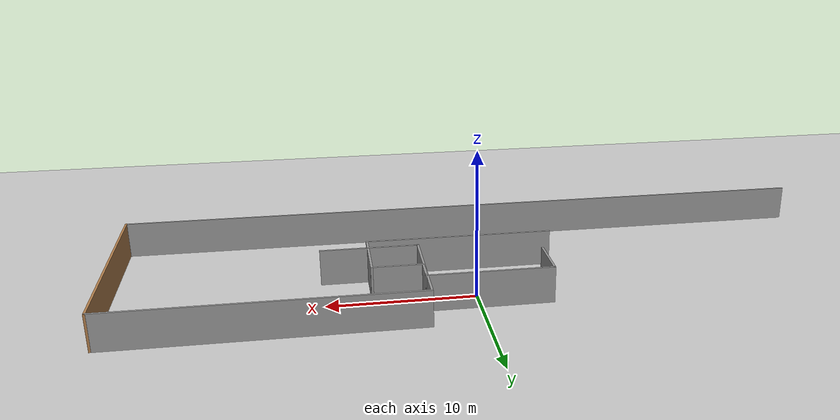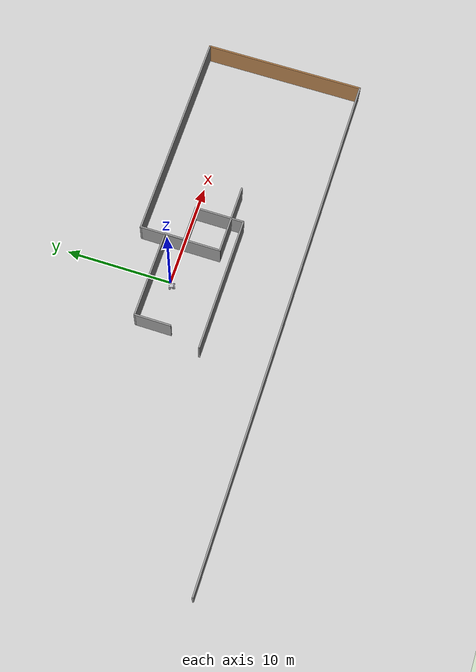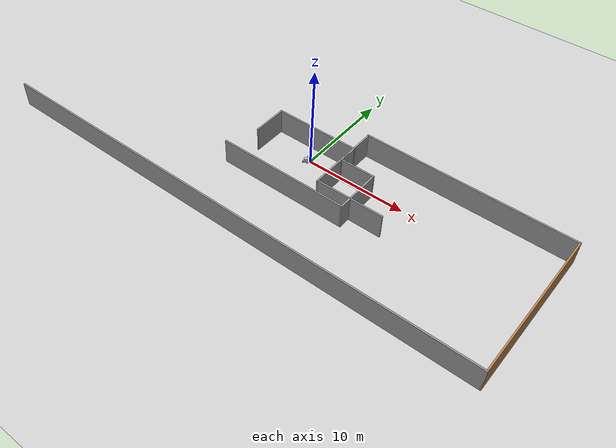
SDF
<sdf version="1.7">
 <world name="default">
  <light name="sun" type="directional">
   <pose>0 0 10 0 -0 0</pose>
   <diffuse>0.8 0.8 0.8 1</diffuse>
   <specular>0.2 0.2 0.2 1</specular>
   <attenuation>
    <range>1000</range>
    <constant>0.9</constant>
    <linear>0.01</linear>
    <quadratic>0.001</quadratic>
   </attenuation>
   <direction>-0.5 0.1 -0.9</direction>
   <spot><inner_angle>0</inner_angle><outer_angle>0</outer_angle><falloff>0</falloff></spot>
  </light>
  <model name="ground_plane">
   <static>1</static>
   <link name="link">
    <collision name="collision">
     <geometry><plane><normal>0 0 1</normal><size>100 100</size></plane></geometry>
     <surface>
      <contact><collide_bitmask>65535</collide_bitmask></contact>
      <friction><ode><mu>100</mu><mu2>50</mu2></ode></friction>
     </surface>
    </collision>
    <visual name="visual">
     <cast_shadows>0</cast_shadows>
     <geometry><plane><normal>0 0 1</normal><size>100 100</size></plane></geometry>
     <material>
      <script><uri>file://media/materials/scripts/gazebo.material</uri><name>Gazebo/Grey</name></script>
     </material>
    </visual>
   </link>
  </model>
  <gravity>0 0 -9.8</gravity>
  <magnetic_field>6e-06 2.3e-05 -4.2e-05</magnetic_field>
  <atmosphere type="adiabatic"/>
  <physics type="ode">
   <max_step_size>0.001</max_step_size>
   <real_time_factor>1</real_time_factor>
   <real_time_update_rate>1000</real_time_update_rate>
  </physics>
  <scene><ambient>0.4 0.4 0.4 1</ambient><background>0.7 0.7 0.7 1</background><shadows>1</shadows></scene>
  <spherical_coordinates>
   <surface_model>EARTH_WGS84</surface_model>
   <latitude_deg>0</latitude_deg>
   <longitude_deg>0</longitude_deg>
   <elevation>0</elevation>
   <heading_deg>0</heading_deg>
  </spherical_coordinates>
  <model name="Autonomous">
   <link name="base_link">
    <inertial>
     <pose>0.004069 0.00053 0.159766 0 -0 0</pose>
     <mass>243.578</mass>
     <inertia>
      <ixx>3.71483</ixx>
      <ixy>-0.0104782</ixy>
      <ixz>-0.117297</ixz>
      <iyy>6.55168</iyy>
      <iyz>-0.0172105</iyz>
      <izz>7.95273</izz>
     </inertia>
    </inertial>
    <collision name="base_link_collision">
     <geometry>
      <mesh>
       <scale>0.001 0.001 0.001</scale>
       <uri>/home/ogunsina/auto_ws/src/Autonomous_description/meshes/base_link.stl</uri>
      </mesh>
     </geometry>
     <surface><friction><ode><mu>0.1</mu><mu2>0.1</mu2></ode></friction></surface>
    </collision>
    <collision name="base_link_fixed_joint_lump__head_plate_1_collision_1">
     <geometry>
      <mesh>
       <scale>0.001 0.001 0.001</scale>
       <uri>/home/ogunsina/auto_ws/src/Autonomous_description/meshes/head_plate_1.stl</uri>
      </mesh>
     </geometry>
     <surface><friction><ode><mu>0.2</mu><mu2>0.2</mu2></ode></friction></surface>
    </collision>
    <collision name="base_link_fixed_joint_lump__lidar_1_collision_2">
     <geometry>
      <mesh>
       <scale>0.001 0.001 0.001</scale>
       <uri>/home/ogunsina/auto_ws/src/Autonomous_description/meshes/lidar_1.stl</uri>
      </mesh>
     </geometry>
     <surface><friction><ode><mu>0.2</mu><mu2>0.2</mu2></ode></friction></surface>
    </collision>
    <collision name="base_link_fixed_joint_lump__camera_1_collision_3">
     <geometry>
      <mesh>
       <scale>0.001 0.001 0.001</scale>
       <uri>/home/ogunsina/auto_ws/src/Autonomous_description/meshes/camera_1.stl</uri>
      </mesh>
     </geometry>
     <surface><friction><ode><mu>0.2</mu><mu2>0.2</mu2></ode></friction></surface>
    </collision>
    <visual name="base_link_visual">
     <geometry>
      <mesh>
       <scale>0.001 0.001 0.001</scale>
       <uri>/home/ogunsina/auto_ws/src/Autonomous_description/meshes/base_link.stl</uri>
      </mesh>
     </geometry>
     <material>
      <script><name>Gazebo/Silver</name><uri>file://media/materials/scripts/gazebo.material</uri></script>
     </material>
    </visual>
    <visual name="base_link_fixed_joint_lump__head_plate_1_visual_1">
     <geometry>
      <mesh>
       <scale>0.001 0.001 0.001</scale>
       <uri>/home/ogunsina/auto_ws/src/Autonomous_description/meshes/head_plate_1.stl</uri>
      </mesh>
     </geometry>
     <material>
      <script><name>Gazebo/Silver</name><uri>file://media/materials/scripts/gazebo.material</uri></script>
     </material>
    </visual>
    <visual name="base_link_fixed_joint_lump__lidar_1_visual_2">
     <geometry>
      <mesh>
       <scale>0.001 0.001 0.001</scale>
       <uri>/home/ogunsina/auto_ws/src/Autonomous_description/meshes/lidar_1.stl</uri>
      </mesh>
     </geometry>
     <material>
      <script><name>Gazebo/Silver</name><uri>file://media/materials/scripts/gazebo.material</uri></script>
     </material>
    </visual>
    <visual name="base_link_fixed_joint_lump__camera_1_visual_3">
     <geometry>
      <mesh>
       <scale>0.001 0.001 0.001</scale>
       <uri>/home/ogunsina/auto_ws/src/Autonomous_description/meshes/camera_1.stl</uri>
      </mesh>
     </geometry>
     <material>
      <script><name>Gazebo/Silver</name><uri>file://media/materials/scripts/gazebo.material</uri></script>
     </material>
    </visual>
    <sensor name="head_hokuyo_sensor" type="ray">
     <visualize>1</visualize>
     <update_rate>40</update_rate>
     <ray>
      <scan>
       <horizontal>
        <samples>720</samples>
        <resolution>1</resolution>
        <min_angle>-1.5708</min_angle>
        <max_angle>1.5708</max_angle>
       </horizontal>
       <vertical><samples>1</samples><min_angle>0</min_angle><max_angle>0</max_angle></vertical>
      </scan>
      <range><min>0.1</min><max>30</max><resolution>0.01</resolution></range>
      <noise><type>gaussian</type><mean>0</mean><stddev>0.01</stddev></noise>
     </ray>
     <plugin name="gazebo_ros_head_hokuyo_controller" filename="libgazebo_ros_laser.so">
      <topicName>/scan</topicName>
      <frameName>lidar_1</frameName>
      <robotNamespace>/</robotNamespace>
     </plugin>
     <pose>0.286443 -0.129544 0.3 0 -0 0</pose>
    </sensor>
    <self_collide>1</self_collide>
    <sensor name="imu_sensor" type="imu">
     <always_on>1</always_on>
     <update_rate>100</update_rate>
     <visualize>1</visualize>
     <topic>/imu</topic>
     <plugin name="imu_plugin" filename="libgazebo_ros_imu_sensor.so">
      <topicName>imu</topicName>
      <bodyName>camera_1</bodyName>
      <updateRateHZ>10.0</updateRateHZ>
      <gaussianNoise>0.0</gaussianNoise>
      <xyzOffset>0 0 0</xyzOffset>
      <rpyOffset>0 0 0</rpyOffset>
      <frameName>camera_1</frameName>
      <initialOrientationAsReference>0</initialOrientationAsReference>
      <robotNamespace>/</robotNamespace>
     </plugin>
     <pose>0.189761 -0.076346 0.27 0 -0 0</pose>
    </sensor>
   </link>
   <joint name="Rev2" type="revolute">
    <pose relative_to="base_link">-0.175 -0.2315 0.051428 0 -0 0</pose>
    <parent>base_link</parent>
    <child>leftwheel1_1</child>
    <axis>
     <xyz>0 1 0</xyz>
     <limit><lower>-1e+16</lower><upper>1e+16</upper></limit>
     <dynamics><spring_reference>0</spring_reference><spring_stiffness>0</spring_stiffness></dynamics>
    </axis>
   </joint>
   <link name="leftwheel1_1">
    <pose relative_to="Rev2">0 0 0 0 -0 0</pose>
    <inertial>
     <pose>-0 0.017601 -0 0 -0 0</pose>
     <mass>28.5062</mass>
     <inertia>
      <ixx>0.136487</ixx>
      <ixy>0</ixy>
      <ixz>0</ixz>
      <iyy>0.241289</iyy>
      <iyz>0</iyz>
      <izz>0.136487</izz>
     </inertia>
    </inertial>
    <collision name="leftwheel1_1_collision">
     <pose>0.175 0.2315 -0.051428 0 -0 0</pose>
     <geometry>
      <mesh>
       <scale>0.001 0.001 0.001</scale>
       <uri>/home/ogunsina/auto_ws/src/Autonomous_description/meshes/leftwheel1_1.stl</uri>
      </mesh>
     </geometry>
     <surface><friction><ode><mu>1500</mu><mu2>1500</mu2></ode></friction></surface>
    </collision>
    <visual name="leftwheel1_1_visual">
     <pose>0.175 0.2315 -0.051428 0 -0 0</pose>
     <geometry>
      <mesh>
       <scale>0.001 0.001 0.001</scale>
       <uri>/home/ogunsina/auto_ws/src/Autonomous_description/meshes/leftwheel1_1.stl</uri>
      </mesh>
     </geometry>
     <material>
      <script><name>Gazebo/Silver</name><uri>file://media/materials/scripts/gazebo.material</uri></script>
     </material>
    </visual>
    <self_collide>1</self_collide>
   </link>
   <joint name="Rev3" type="revolute">
    <pose relative_to="base_link">0.175 -0.2315 0.051428 0 -0 0</pose>
    <parent>base_link</parent>
    <child>leftwheel2_1</child>
    <axis>
     <xyz>0 1 0</xyz>
     <limit><lower>-1e+16</lower><upper>1e+16</upper></limit>
     <dynamics><spring_reference>0</spring_reference><spring_stiffness>0</spring_stiffness></dynamics>
    </axis>
   </joint>
   <link name="leftwheel2_1">
    <pose relative_to="Rev3">0 0 0 0 -0 0</pose>
    <inertial>
     <pose>0 0.017668 -0 0 -0 0</pose>
     <mass>28.6967</mass>
     <inertia>
      <ixx>0.138023</ixx>
      <ixy>0</ixy>
      <ixz>0</ixz>
      <iyy>0.244287</iyy>
      <iyz>0</iyz>
      <izz>0.138023</izz>
     </inertia>
    </inertial>
    <collision name="leftwheel2_1_collision">
     <pose>-0.175 0.2315 -0.051428 0 -0 0</pose>
     <geometry>
      <mesh>
       <scale>0.001 0.001 0.001</scale>
       <uri>/home/ogunsina/auto_ws/src/Autonomous_description/meshes/leftwheel2_1.stl</uri>
      </mesh>
     </geometry>
     <surface><friction><ode><mu>0.2</mu><mu2>0.2</mu2></ode></friction></surface>
    </collision>
    <visual name="leftwheel2_1_visual">
     <pose>-0.175 0.2315 -0.051428 0 -0 0</pose>
     <geometry>
      <mesh>
       <scale>0.001 0.001 0.001</scale>
       <uri>/home/ogunsina/auto_ws/src/Autonomous_description/meshes/leftwheel2_1.stl</uri>
      </mesh>
     </geometry>
     <material>
      <script><name>Gazebo/Silver</name><uri>file://media/materials/scripts/gazebo.material</uri></script>
     </material>
    </visual>
    <self_collide>1</self_collide>
   </link>
   <joint name="Rev4" type="revolute">
    <pose relative_to="base_link">-0.175 0.2315 0.053213 0 -0 0</pose>
    <parent>base_link</parent>
    <child>rightwheel1_1</child>
    <axis>
     <xyz>0 1 0</xyz>
     <limit><lower>-1e+16</lower><upper>1e+16</upper></limit>
     <dynamics><spring_reference>0</spring_reference><spring_stiffness>0</spring_stiffness></dynamics>
    </axis>
   </joint>
   <link name="rightwheel1_1">
    <pose relative_to="Rev4">0 0 0 0 -0 0</pose>
    <inertial>
     <pose>0 -0.017696 0 0 -0 0</pose>
     <mass>28.7062</mass>
     <inertia>
      <ixx>0.138087</ixx>
      <ixy>0</ixy>
      <ixz>0</ixz>
      <iyy>0.244397</iyy>
      <iyz>0</iyz>
      <izz>0.138087</izz>
     </inertia>
    </inertial>
    <collision name="rightwheel1_1_collision">
     <pose>0.175 -0.2315 -0.053213 0 -0 0</pose>
     <geometry>
      <mesh>
       <scale>0.001 0.001 0.001</scale>
       <uri>/home/ogunsina/auto_ws/src/Autonomous_description/meshes/rightwheel1_1.stl</uri>
      </mesh>
     </geometry>
     <surface><friction><ode><mu>1500</mu><mu2>1500</mu2></ode></friction></surface>
    </collision>
    <visual name="rightwheel1_1_visual">
     <pose>0.175 -0.2315 -0.053213 0 -0 0</pose>
     <geometry>
      <mesh>
       <scale>0.001 0.001 0.001</scale>
       <uri>/home/ogunsina/auto_ws/src/Autonomous_description/meshes/rightwheel1_1.stl</uri>
      </mesh>
     </geometry>
     <material>
      <script><name>Gazebo/Silver</name><uri>file://media/materials/scripts/gazebo.material</uri></script>
     </material>
    </visual>
    <self_collide>1</self_collide>
   </link>
   <joint name="Rev5" type="revolute">
    <pose relative_to="base_link">0.175 0.2315 0.053213 0 -0 0</pose>
    <parent>base_link</parent>
    <child>rightwheel2_1</child>
    <axis>
     <xyz>0 1 0</xyz>
     <limit><lower>-1e+16</lower><upper>1e+16</upper></limit>
     <dynamics><spring_reference>0</spring_reference><spring_stiffness>0</spring_stiffness></dynamics>
    </axis>
   </joint>
   <link name="rightwheel2_1">
    <pose relative_to="Rev5">0 0 0 0 -0 0</pose>
    <inertial>
     <pose>-0 -0.017657 0 0 -0 0</pose>
     <mass>28.689</mass>
     <inertia>
      <ixx>0.137953</ixx>
      <ixy>0</ixy>
      <ixz>0</ixz>
      <iyy>0.244154</iyy>
      <iyz>0</iyz>
      <izz>0.137953</izz>
     </inertia>
    </inertial>
    <collision name="rightwheel2_1_collision">
     <pose>-0.175 -0.2315 -0.053213 0 -0 0</pose>
     <geometry>
      <mesh>
       <scale>0.001 0.001 0.001</scale>
       <uri>/home/ogunsina/auto_ws/src/Autonomous_description/meshes/rightwheel2_1.stl</uri>
      </mesh>
     </geometry>
     <surface><friction><ode><mu>0.2</mu><mu2>0.2</mu2></ode></friction></surface>
    </collision>
    <visual name="rightwheel2_1_visual">
     <pose>-0.175 -0.2315 -0.053213 0 -0 0</pose>
     <geometry>
      <mesh>
       <scale>0.001 0.001 0.001</scale>
       <uri>/home/ogunsina/auto_ws/src/Autonomous_description/meshes/rightwheel2_1.stl</uri>
      </mesh>
     </geometry>
     <material>
      <script><name>Gazebo/Silver</name><uri>file://media/materials/scripts/gazebo.material</uri></script>
     </material>
    </visual>
    <self_collide>1</self_collide>
   </link>
   <plugin name="control" filename="libgazebo_ros_control.so"><robotNamespace>/</robotNamespace></plugin>
   <static>0</static>
   <plugin name="differential_drive_controller" filename="libgazebo_ros_diff_drive.so">
    <legacyMode>0</legacyMode>
    <alwaysOn>1</alwaysOn>
    <updateRate>20</updateRate>
    <leftJoint>Rev2</leftJoint>
    <rightJoint>Rev3</rightJoint>
    <wheelSeparation>0.4</wheelSeparation>
    <wheelDiameter>0.1</wheelDiameter>
    <torque>20</torque>
    <commandTopic>cmd_vel</commandTopic>
    <odometryTopic>odom</odometryTopic>
    <odometryFrame>odom</odometryFrame>
    <robotBaseFrame>base_link</robotBaseFrame>
    <robotNamespace>/</robotNamespace>
   </plugin>
   <pose>-0.330062 -0.272342 0.080787 -0.005122 -0.001468 -1.22709</pose>
  </model>
  <model name="wworld">
   <pose>0.455 -1.585 0 0 -0 0</pose>
   <link name="Wall_0">
    <collision name="Wall_0_Collision">
     <geometry><box><size>13 0.15 2.5</size></box></geometry>
     <pose>0 0 1.25 0 -0 0</pose>
    </collision>
    <visual name="Wall_0_Visual">
     <pose>0 0 1.25 0 -0 0</pose>
     <geometry><box><size>13 0.15 2.5</size></box></geometry>
     <material>
      <script><uri>file://media/materials/scripts/gazebo.material</uri><name>Gazebo/Grey</name></script>
      <ambient>1 1 1 1</ambient>
     </material>
     <meta><layer>0</layer></meta>
    </visual>
    <pose>-0 -3.225 0 0 -0 0</pose>
   </link>
   <link name="Wall_1">
    <collision name="Wall_1_Collision">
     <geometry><box><size>4.75 0.15 2.5</size></box></geometry>
     <pose>0 0 1.25 0 -0 0</pose>
    </collision>
    <visual name="Wall_1_Visual">
     <pose>0 0 1.25 0 -0 0</pose>
     <geometry><box><size>4.75 0.15 2.5</size></box></geometry>
     <material>
      <script><uri>file://media/materials/scripts/gazebo.material</uri><name>Gazebo/Grey</name></script>
      <ambient>1 1 1 1</ambient>
     </material>
     <meta><layer>0</layer></meta>
    </visual>
    <pose>6.425 -0.925 0 0 -0 1.5708</pose>
   </link>
   <link name="Wall_2">
    <collision name="Wall_2_Collision">
     <geometry><box><size>3.5 0.15 2.5</size></box></geometry>
     <pose>0 0 1.25 0 -0 0</pose>
    </collision>
    <visual name="Wall_2_Visual">
     <pose>0 0 1.25 0 -0 0</pose>
     <geometry><box><size>3.5 0.15 2.5</size></box></geometry>
     <material>
      <script><uri>file://media/materials/scripts/gazebo.material</uri><name>Gazebo/Grey</name></script>
      <ambient>1 1 1 1</ambient>
     </material>
     <meta><layer>0</layer></meta>
    </visual>
    <pose>4.75 1.375 0 0 -0 3.14159</pose>
   </link>
   <link name="Wall_4">
    <collision name="Wall_4_Collision">
     <geometry><box><size>2 0.15 2.5</size></box></geometry>
     <pose>0 0 1.25 0 -0 0</pose>
    </collision>
    <visual name="Wall_4_Visual">
     <pose>0 0 1.25 0 -0 0</pose>
     <geometry><box><size>2 0.15 2.5</size></box></geometry>
     <material>
      <script><uri>file://media/materials/scripts/gazebo.material</uri><name>Gazebo/Grey</name></script>
      <ambient>1 1 1 1</ambient>
     </material>
     <meta><layer>0</layer></meta>
    </visual>
    <pose>3.075 2.3 0 0 -0 1.5708</pose>
   </link>
   <link name="Wall_5">
    <collision name="Wall_5_Collision">
     <geometry><box><size>8.5 0.15 2.5</size></box></geometry>
     <pose>0 0 1.25 0 -0 0</pose>
    </collision>
    <visual name="Wall_5_Visual">
     <pose>0 0 1.25 0 -0 0</pose>
     <geometry><box><size>8.5 0.15 2.5</size></box></geometry>
     <material>
      <script><uri>file://media/materials/scripts/gazebo.material</uri><name>Gazebo/Grey</name></script>
      <ambient>1 1 1 1</ambient>
     </material>
     <meta><layer>0</layer></meta>
    </visual>
    <pose>-1.1 3.225 0 0 -0 3.14159</pose>
   </link>
   <link name="Wall_7">
    <collision name="Wall_7_Collision">
     <geometry><box><size>3.5 0.15 2.5</size></box></geometry>
     <pose>0 0 1.25 0 -0 0</pose>
    </collision>
    <visual name="Wall_7_Visual">
     <pose>0 0 1.25 0 -0 0</pose>
     <geometry><box><size>3.5 0.15 2.5</size></box></geometry>
     <material>
      <script><uri>file://media/materials/scripts/gazebo.material</uri><name>Gazebo/Grey</name></script>
      <ambient>1 1 1 1</ambient>
     </material>
     <meta><layer>0</layer></meta>
    </visual>
    <pose>-5.275 1.55 0 0 -0 -1.5708</pose>
   </link>
   <static>1</static>
  </model>
  <light name="user_point_light_0" type="point">
   <pose>-1.48476 -0.741662 1 0 -0 0</pose>
   <diffuse>0.5 0.5 0.5 1</diffuse>
   <specular>0.1 0.1 0.1 1</specular>
   <attenuation>
    <range>20</range>
    <constant>0.5</constant>
    <linear>0.01</linear>
    <quadratic>0.001</quadratic>
   </attenuation>
   <cast_shadows>0</cast_shadows>
   <direction>0 0 -1</direction>
   <spot><inner_angle>0</inner_angle><outer_angle>0</outer_angle><falloff>0</falloff></spot>
  </light>
  <model name="world2">
   <pose>-1.46795 -3.59433 0 0 -0 0</pose>
   <link name="Wall_4">
    <collision name="Wall_4_Collision">
     <geometry><box><size>50.75 0.15 2.5</size></box></geometry>
     <pose>0 0 1.25 0 -0 0</pose>
    </collision>
    <visual name="Wall_4_Visual">
     <pose>0 0 1.25 0 -0 0</pose>
     <geometry><box><size>50.75 0.15 2.5</size></box></geometry>
     <material>
      <script><uri>file://media/materials/scripts/gazebo.material</uri><name>Gazebo/Grey</name></script>
      <ambient>1 1 1 1</ambient>
     </material>
     <meta><layer>0</layer></meta>
    </visual>
    <pose>-1e-06 -7.55 0 0 -0 0</pose>
   </link>
   <link name="Wall_5">
    <collision name="Wall_5_Collision">
     <geometry><box><size>15.25 0.15 2.5</size></box></geometry>
     <pose>0 0 1.25 0 -0 0</pose>
    </collision>
    <visual name="Wall_5_Visual">
     <pose>0 0 1.25 0 -0 0</pose>
     <geometry><box><size>15.25 0.15 2.5</size></box></geometry>
     <material>
      <script><uri>file://media/materials/scripts/gazebo.material</uri><name>Gazebo/Wood</name></script>
      <ambient>1 1 1 1</ambient>
     </material>
     <meta><layer>0</layer></meta>
    </visual>
    <pose>25.3 0 0 0 -0 1.5708</pose>
   </link>
   <link name="Wall_6">
    <collision name="Wall_6_Collision">
     <geometry><box><size>20.5 0.15 2.5</size></box></geometry>
     <pose>0 0 1.25 0 -0 0</pose>
    </collision>
    <visual name="Wall_6_Visual">
     <pose>0 0 1.25 0 -0 0</pose>
     <geometry><box><size>20.5 0.15 2.5</size></box></geometry>
     <material>
      <script><uri>file://media/materials/scripts/gazebo.material</uri><name>Gazebo/Grey</name></script>
      <ambient>1 1 1 1</ambient>
     </material>
     <meta><layer>0</layer></meta>
    </visual>
    <pose>15.125 7.55 0 0 -0 3.14159</pose>
   </link>
   <link name="Wall_8">
    <collision name="Wall_8_Collision">
     <geometry><box><size>7.75 0.15 2.5</size></box></geometry>
     <pose>0 0 1.25 0 -0 0</pose>
    </collision>
    <visual name="Wall_8_Visual">
     <pose>0 0 1.25 0 -0 0</pose>
     <geometry><box><size>7.75 0.15 2.5</size></box></geometry>
     <material>
      <script><uri>file://media/materials/scripts/gazebo.material</uri><name>Gazebo/Grey</name></script>
      <ambient>1 1 1 1</ambient>
     </material>
     <meta><layer>0</layer></meta>
    </visual>
    <pose>4.95 3.75 0 0 -0 -1.5708</pose>
   </link>
   <link name="Wall_9">
    <collision name="Wall_9_Collision">
     <geometry><box><size>6.75 0.15 2.5</size></box></geometry>
     <pose>0 0 1.25 0 -0 0</pose>
    </collision>
    <visual name="Wall_9_Visual">
     <pose>0 0 1.25 0 -0 0</pose>
     <geometry><box><size>6.75 0.15 2.5</size></box></geometry>
     <material>
      <script><uri>file://media/materials/scripts/gazebo.material</uri><name>Gazebo/Grey</name></script>
      <ambient>1 1 1 1</ambient>
     </material>
     <meta><layer>0</layer></meta>
    </visual>
    <pose>8.25 -0.05 0 0 -0 0</pose>
   </link>
   <static>1</static>
  </model>
 </world>
</sdf>
